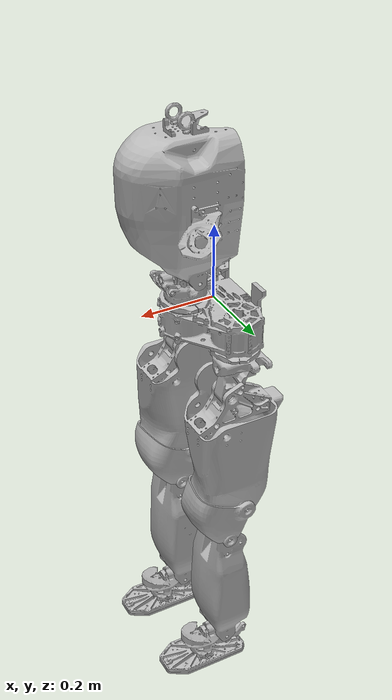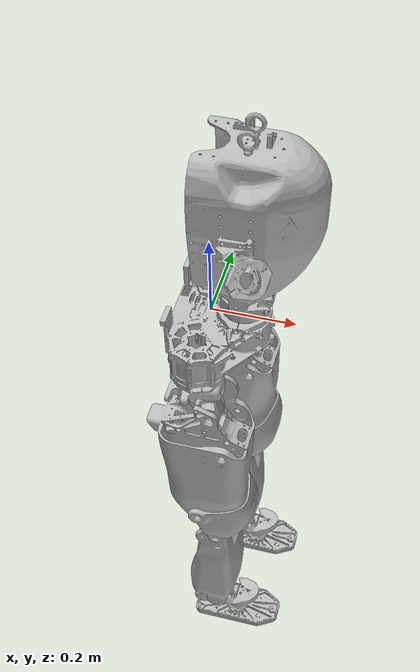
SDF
<sdf version='1.4'>
  <model name='nadia'>
    <link name='PELVIS_LINK'>
      <pose>0 0 0 0 -0 0</pose>
      <inertial>
        <pose>0.0207309 2.023e-05 -0.0309812 0 -0 0</pose>
        <mass>19.0917</mass>
        <inertia>
          <ixx>0.0942</ixx>
          <ixy>6.05e-06</ixy>
          <ixz>0.000379</ixz>
          <iyy>0.0416</iyy>
          <iyz>3.37e-07</iyz>
          <izz>0.112</izz>
        </inertia>
      </inertial>
	  <sensor name="pelvis_orientus_imu" type="imu">
      <pose>-0.00960080 -0.0000010 -0.07599977 0 0 3.141592</pose>
      <always_on>1</always_on>
        <imu>
          <noise>
            <type>gaussian</type>
            <rate>
              <mean>0</mean>
              <stddev>0.0002</stddev>
              <bias_mean>7.5e-06</bias_mean>
              <bias_stddev>8e-07</bias_stddev>
            </rate>
            <accel>
              <mean>0</mean>
              <stddev>0.017</stddev>
              <bias_mean>0.1</bias_mean>
              <bias_stddev>0.001</bias_stddev>
            </accel>
          </noise>
        </imu>
      <visualize>1</visualize>
      <topic>imu_sensor</topic>
    </sensor>

    <sensor name="pelvis_gable_imu" type="imu">
      <pose>0.04096090  -0.17557654 -0.00812384 1.5708 3.141592 0.3926991</pose>
      <always_on>1</always_on>
        <imu>
          <noise>
            <type>gaussian</type>
            <rate>
              <mean>0</mean>
              <stddev>0.0002</stddev>
              <bias_mean>7.5e-06</bias_mean>
              <bias_stddev>8e-07</bias_stddev>
            </rate>
            <accel>
              <mean>0</mean>
              <stddev>0.017</stddev>
              <bias_mean>0.1</bias_mean>
              <bias_stddev>0.001</bias_stddev>
            </accel>
          </noise>
        </imu>
      <visualize>1</visualize>
      <topic>imu_sensor</topic>
    </sensor>

      <sensor name="pelvis_stim_imu" type="imu">
      <pose>-0.03133646 0.02237500 -0.07000000 0.0 3.141592 0.0</pose>
      <always_on>1</always_on>
        <imu>
          <noise>
            <type>gaussian</type>
            <rate>
              <mean>0</mean>
              <stddev>0.0002</stddev>
              <bias_mean>7.5e-06</bias_mean>
              <bias_stddev>8e-07</bias_stddev>
            </rate>
            <accel>
              <mean>0</mean>
              <stddev>0.017</stddev>
              <bias_mean>0.1</bias_mean>
              <bias_stddev>0.001</bias_stddev>
            </accel>
          </noise>
        </imu>
      <visualize>1</visualize>
      <topic>imu_sensor</topic>
    </sensor>

      <visual name='PELVIS_LINK_visual'>
        <pose>0 0 0 0 -0 0</pose>
        <geometry>
          <mesh>
            <scale>1 1 1</scale>
            <uri>model://nadia_V16_description/meshes/pelvis.obj</uri>
          </mesh>
        </geometry>
      </visual>
      <velocity_decay>
        <linear>0</linear>
        <angular>0</angular>
      </velocity_decay>
    </link>
    <link name='LEFT_HIP_YAW_LINK'>
      <pose>0 0.115 -0.07185 0 -0 0</pose>
      <inertial>
        <pose>-0.00629727 0.00606893 -0.0397184 0 -0 0</pose>
        <mass>1.814</mass>
        <inertia>
          <ixx>0.00474191</ixx>
          <ixy>0.000527</ixy>
          <ixz>-0.000307</ixz>
          <iyy>0.00414</iyy>
          <iyz>1.36e-05</iyz>
          <izz>0.00569</izz>
        </inertia>
      </inertial>
      <visual name='LEFT_HIP_YAW_LINK_visual'>
        <pose>0 0 0 0 -0 0</pose>
        <geometry>
          <mesh>
            <scale>1 1 1</scale>
            <uri>model://nadia_V16_description/meshes/left_hip_yaw.obj</uri>
          </mesh>
        </geometry>
      </visual>
      <velocity_decay>
        <linear>0</linear>
        <angular>0</angular>
      </velocity_decay>
    </link>
    <joint name='LEFT_HIP_Z' type='revolute'>
      <child>LEFT_HIP_YAW_LINK</child>
      <parent>PELVIS_LINK</parent>
      <axis>
        <xyz>0 0 -1</xyz>
        <limit>
          <lower>-0.7854</lower>
          <upper>0.7854</upper>
          <effort>1000</effort>
          <velocity>100</velocity>
        </limit>
        <dynamics>
          <damping>0.05</damping>
        </dynamics>
      </axis>
    </joint>
    <link name='LEFT_HIP_ROLL_LINK'>
      <pose>0.035 0.13 -0.1216 0 -0 0</pose>
      <inertial>
        <pose>-0.0132704 0.00316985 -0.054 0 -0 0</pose>
        <mass>0.762</mass>
        <inertia>
          <ixx>0.00102899</ixx>
          <ixy>-9.31e-06</ixy>
          <ixz>0.000352</ixz>
          <iyy>0.00138</iyy>
          <iyz>3.22e-05</iyz>
          <izz>0.000663</izz>
        </inertia>
      </inertial>
      <visual name='LEFT_HIP_ROLL_LINK_visual'>
        <pose>0 0 0 0 -0 0</pose>
        <geometry>
          <mesh>
            <scale>1 1 1</scale>
            <uri>model://nadia_V16_description/meshes/left_hip_roll.obj</uri>
          </mesh>
        </geometry>
      </visual>
      <velocity_decay>
        <linear>0</linear>
        <angular>0</angular>
      </velocity_decay>
    </link>
    <joint name='LEFT_HIP_X' type='revolute'>
      <child>LEFT_HIP_ROLL_LINK</child>
      <parent>LEFT_HIP_YAW_LINK</parent>
      <axis>
        <xyz>1 0 0</xyz>
        <limit>
          <lower>-0.5236</lower>
          <upper>1.0472</upper>
          <effort>1000</effort>
          <velocity>100</velocity>
        </limit>
        <dynamics>
          <damping>0.05</damping>
        </dynamics>
      </axis>
    </joint>
    <link name='LEFT_THIGH_LINK'>
      <pose>0.035 0.13 -0.200668 0 -0 0</pose>
      <inertial>
        <pose>-0.00093749 0.0113451 -0.178631 0 -0 0</pose>
        <mass>10.953</mass>
        <inertia>
          <ixx>0.162227</ixx>
          <ixy>-0.000749</ixy>
          <ixz>0.0156</ixz>
          <iyy>0.174</iyy>
          <iyz>0.00213</iyz>
          <izz>0.0528</izz>
        </inertia>
      </inertial>
      <sensor name="left_thigh_imu" type="imu">
      <pose>0.05793744 0.01666131 -0.09511697 2.025  0.000 -1.571</pose>
      <always_on>1</always_on>
        <imu>
          <noise>
            <type>gaussian</type>
            <rate>
              <mean>0</mean>
              <stddev>0.0002</stddev>
              <bias_mean>7.5e-06</bias_mean>
              <bias_stddev>8e-07</bias_stddev>
            </rate>
            <accel>
              <mean>0</mean>
              <stddev>0.017</stddev>
              <bias_mean>0.1</bias_mean>
              <bias_stddev>0.001</bias_stddev>
            </accel>
          </noise>
        </imu>
      <visualize>1</visualize>
    </sensor>
      <visual name='LEFT_THIGH_LINK_visual'>
        <pose>0 0 0 0 -0 0</pose>
        <geometry>
          <mesh>
            <scale>1 1 1</scale>
            <uri>model://nadia_V16_description/meshes/left_thigh.obj</uri>
          </mesh>
        </geometry>
      </visual>
      <velocity_decay>
        <linear>0</linear>
        <angular>0</angular>
      </velocity_decay>
    </link>
    <joint name='LEFT_HIP_Y' type='revolute'>
      <child>LEFT_THIGH_LINK</child>
      <parent>LEFT_HIP_ROLL_LINK</parent>
      <axis>
        <xyz>0 1 0</xyz>
        <limit>
          <lower>-1.57</lower>
          <upper>0.314</upper>
          <effort>1000</effort>
          <velocity>100</velocity>
        </limit>
        <dynamics>
          <damping>0.05</damping>
        </dynamics>
      </axis>
    </joint>
    <link name='LEFT_KNEE_LINKAGE_LINK'>
      <pose>0.035 0.13 -0.580668 0 -0 0</pose>
      <inertial>
        <pose>0.00901763 0.00753613 -0.0436823 0 -0 0</pose>
        <mass>0.936</mass>
        <inertia>
          <ixx>0.00261734</ixx>
          <ixy>3.06e-07</ixy>
          <ixz>0.000313</ixz>
          <iyy>0.00159</iyy>
          <iyz>1.51e-06</iyz>
          <izz>0.00128</izz>
        </inertia>
      </inertial>
      <visual name='LEFT_KNEE_LINKAGE_LINK_visual'>
        <pose>0 0 0 0 -0 0</pose>
        <geometry>
          <mesh>
            <scale>1 1 1</scale>
            <uri>model://nadia_V16_description/meshes/left_knee_linkage.obj</uri>
          </mesh>
        </geometry>
      </visual>
      <velocity_decay>
        <linear>0</linear>
        <angular>0</angular>
      </velocity_decay>
    </link>
    <joint name='LEFT_KNEE_LINKAGE_UPPER_Y' type='revolute'>
      <child>LEFT_KNEE_LINKAGE_LINK</child>
      <parent>LEFT_THIGH_LINK</parent>
      <axis>
        <xyz>0 1 0</xyz>
        <limit>
          <lower>0</lower>
          <upper>2.6</upper>
          <effort>20</effort>
          <velocity>150</velocity>
        </limit>
        <dynamics>
          <damping>0.05</damping>
        </dynamics>
      </axis>
    </joint>
    <link name='LEFT_KNEE_SHELL_LINK'>
      <pose>0.0138691 0.13 -0.535353 0 -0 0</pose>
      <inertial>
        <pose>0.0248995 0.00826196 -0.0533022 0 -0 0</pose>
        <mass>1.101</mass>
        <inertia>
          <ixx>0.00642</ixx>
          <ixy>-3.64e-05</ixy>
          <ixz>1.43e-05</ixz>
          <iyy>0.00456</iyy>
          <iyz>-6.54e-05</iyz>
          <izz>0.00566</izz>
        </inertia>
      </inertial>
      <visual name='LEFT_KNEE_SHELL_LINK_visual'>
        <pose>0 0 0 0 -0 0</pose>
        <geometry>
          <mesh>
            <scale>1 1 1</scale>
            <uri>model://nadia_V16_description/meshes/left_knee_shell.obj</uri>
          </mesh>
        </geometry>
      </visual>
      <velocity_decay>
        <linear>0</linear>
        <angular>0</angular>
      </velocity_decay>
    </link>
    <joint name='LEFT_KNEE_SHELL_UPPER_Y' type='revolute'>
      <child>LEFT_KNEE_SHELL_LINK</child>
      <parent>LEFT_THIGH_LINK</parent>
      <axis>
        <xyz>0 1 0</xyz>
        <limit>
          <lower>0</lower>
          <upper>2.62</upper>
          <effort>1000</effort>
          <velocity>100</velocity>
        </limit>
        <dynamics>
          <damping>0.05</damping>
        </dynamics>
      </axis>
    </joint>
    <link name='LEFT_SHIN_LINK'>
      <pose>0.0561879 0.13 -0.636886 0 -0 0</pose>
      <inertial>
        <pose>-0.0184149 0.00228086 -0.220542 0 -0 0</pose>
        <mass>5.42</mass>
        <inertia>
          <ixx>0.0644378</ixx>
          <ixy>-0.000214</ixy>
          <ixz>-0.00538</ixz>
          <iyy>0.0583</iyy>
          <iyz>-0.000962</iyz>
          <izz>0.0136</izz>
        </inertia>
      </inertial>
      <sensor name="left_shin_imu" type="imu">
      <pose>-0.03216129 -0.07159184 -0.1864738 -1.570796 0.0 0.0</pose>
      <always_on>1</always_on>
        <imu>
          <noise>
            <type>gaussian</type>
            <rate>
              <mean>0</mean>
              <stddev>0.0002</stddev>
              <bias_mean>7.5e-06</bias_mean>
              <bias_stddev>8e-07</bias_stddev>
            </rate>
            <accel>
              <mean>0</mean>
              <stddev>0.017</stddev>
              <bias_mean>0.1</bias_mean>
              <bias_stddev>0.001</bias_stddev>
            </accel>
          </noise>
        </imu>
      <visualize>1</visualize>
    </sensor>
      <visual name='LEFT_SHIN_LINK_visual'>
        <pose>0 0 0 0 -0 0</pose>
        <geometry>
          <mesh>
            <scale>1 1 1</scale>
            <uri>model://nadia_V16_description/meshes/left_shin.obj</uri>
          </mesh>
        </geometry>
      </visual>
      <velocity_decay>
        <linear>0</linear>
        <angular>0</angular>
      </velocity_decay>
    </link>
    <joint name='LEFT_KNEE_SHELL_LOWER_Y' type='revolute'>
      <child>LEFT_SHIN_LINK</child>
      <parent>LEFT_KNEE_SHELL_LINK</parent>
      <axis>
        <xyz>0 1 0</xyz>
        <limit>
          <lower>0</lower>
          <upper>2.62</upper>
          <effort>1000</effort>
          <velocity>100</velocity>
        </limit>
        <dynamics>
          <damping>0.05</damping>
        </dynamics>
      </axis>
    </joint>
    <link name='LEFT_ANKLE_LINK'>
      <pose>0.0478857 0.13 -1.03903 0 -0 0</pose>
      <inertial>
        <pose>-0.00072338 -6.619e-05 -0.00399965 0 -0 0</pose>
        <mass>0.56</mass>
        <inertia>
          <ixx>0.000459</ixx>
          <ixy>2.65e-08</ixy>
          <ixz>-2.43e-06</ixz>
          <iyy>0.000336</iyy>
          <iyz>1.48e-07</iyz>
          <izz>0.000645</izz>
        </inertia>
      </inertial>
      <visual name='LEFT_ANKLE_LINK_visual'>
        <pose>0 0 0 0 -0 0</pose>
        <geometry>
          <mesh>
            <scale>1 1 1</scale>
            <uri>model://nadia_V16_description/meshes/ankle.obj</uri>
          </mesh>
        </geometry>
      </visual>
      <velocity_decay>
        <linear>0</linear>
        <angular>0</angular>
      </velocity_decay>
    </link>
    <joint name='LEFT_ANKLE_Y' type='revolute'>
      <child>LEFT_ANKLE_LINK</child>
      <parent>LEFT_SHIN_LINK</parent>
      <axis>
        <xyz>0 1 0</xyz>
        <limit>
          <lower>-1.0472</lower>
          <upper>0.698132</upper>
          <effort>1000</effort>
          <velocity>100</velocity>
        </limit>
        <dynamics>
          <damping>0.05</damping>
        </dynamics>
      </axis>
    </joint>
    <link name='LEFT_FOOT_LINK'>
      <pose>0.0478857 0.13 -1.04903 0 -0 0</pose>
      <inertial>
        <pose>0.03075449 0.00007807 -0.04382467 0 -0 0</pose>
        <mass>1.75</mass>
        <inertia>
          <ixx>0.00345011</ixx>
          <ixy>-0.0000073</ixy>
          <ixz>0.0014225</ixz>
          <iyy>0.00955764</iyy>
          <iyz>-2.269e-7</iyz>
          <izz>0.00881313</izz>
        </inertia>
      </inertial>
      <visual name='LEFT_FOOT_LINK_visual'>
        <pose>0 0 0 0 -0 0</pose>
        <geometry>
          <mesh>
            <scale>1 1 1</scale>
            <uri>model://nadia_V16_description/meshes/foot.obj</uri>
          </mesh>
        </geometry>
      </visual>
      <velocity_decay>
        <linear>0</linear>
        <angular>0</angular>
      </velocity_decay>
      <sensor name="left_foot_imu" type="imu">
      <pose>0.053 0.0 -0.063 0.0 0.0 1.57079</pose>
      <always_on>1</always_on>
        <imu>
          <noise>
            <type>gaussian</type>
            <rate>
              <mean>0</mean>
              <stddev>0.0002</stddev>
              <bias_mean>7.5e-06</bias_mean>
              <bias_stddev>8e-07</bias_stddev>
            </rate>
            <accel>
              <mean>0</mean>
              <stddev>0.017</stddev>
              <bias_mean>0.1</bias_mean>
              <bias_stddev>0.001</bias_stddev>
            </accel>
          </noise>
        </imu>
      <visualize>1</visualize>
      </sensor>
    </link>
    <joint name='LEFT_ANKLE_X' type='revolute'>
      <child>LEFT_FOOT_LINK</child>
      <parent>LEFT_ANKLE_LINK</parent>
      <axis>
        <xyz>1 0 0</xyz>
        <limit>
          <lower>-0.436332</lower>
          <upper>0.436332</upper>
          <effort>1000</effort>
          <velocity>100</velocity>
        </limit>
        <dynamics>
          <damping>0.05</damping>
        </dynamics>
      </axis>
    </joint>
    <link name='RIGHT_HIP_YAW_LINK'>
      <pose>0 -0.115 -0.07185 0 -0 0</pose>
      <inertial>
        <pose>-0.00629727 -0.00606893 -0.0397184 0 -0 0</pose>
        <mass>1.814</mass>
        <inertia>
          <ixx>0.00474191</ixx>
          <ixy>-0.000527</ixy>
          <ixz>-0.000307</ixz>
          <iyy>0.00414</iyy>
          <iyz>-1.36e-05</iyz>
          <izz>0.00569</izz>
        </inertia>
      </inertial>
      <visual name='RIGHT_HIP_YAW_LINK_visual'>
        <pose>0 0 0 0 -0 0</pose>
        <geometry>
          <mesh>
            <scale>1 1 1</scale>
            <uri>model://nadia_V16_description/meshes/right_hip_yaw.obj</uri>
          </mesh>
        </geometry>
      </visual>
      <velocity_decay>
        <linear>0</linear>
        <angular>0</angular>
      </velocity_decay>
    </link>
    <joint name='RIGHT_HIP_Z' type='revolute'>
      <child>RIGHT_HIP_YAW_LINK</child>
      <parent>PELVIS_LINK</parent>
      <axis>
        <xyz>0 0 -1</xyz>
        <limit>
          <lower>-0.7854</lower>
          <upper>0.7854</upper>
          <effort>1000</effort>
          <velocity>100</velocity>
        </limit>
        <dynamics>
          <damping>0.05</damping>
        </dynamics>
      </axis>
    </joint>
    <link name='RIGHT_HIP_ROLL_LINK'>
      <pose>0.035 -0.13 -0.1216 0 -0 0</pose>
      <inertial>
        <pose>-0.0132704 -0.00316985 -0.054 0 -0 0</pose>
        <mass>0.762</mass>
        <inertia>
          <ixx>0.00102899</ixx>
          <ixy>9.31e-06</ixy>
          <ixz>0.000352</ixz>
          <iyy>0.00138</iyy>
          <iyz>-3.22e-05</iyz>
          <izz>0.000663</izz>
        </inertia>
      </inertial>
      <visual name='RIGHT_HIP_ROLL_LINK_visual'>
        <pose>0 0 0 0 -0 0</pose>
        <geometry>
          <mesh>
            <scale>1 1 1</scale>
            <uri>model://nadia_V16_description/meshes/right_hip_roll.obj</uri>
          </mesh>
        </geometry>
      </visual>
      <velocity_decay>
        <linear>0</linear>
        <angular>0</angular>
      </velocity_decay>
    </link>
    <joint name='RIGHT_HIP_X' type='revolute'>
      <child>RIGHT_HIP_ROLL_LINK</child>
      <parent>RIGHT_HIP_YAW_LINK</parent>
      <axis>
        <xyz>1 0 0</xyz>
        <limit>
          <lower>-1.0472</lower>
          <upper>0.5236</upper>
          <effort>1000</effort>
          <velocity>100</velocity>
        </limit>
        <dynamics>
          <damping>0.05</damping>
        </dynamics>
      </axis>
    </joint>
    <link name='RIGHT_THIGH_LINK'>
      <pose>0.035 -0.13 -0.200668 0 -0 0</pose>
      <inertial>
        <pose>-0.00093749 -0.0113451 -0.178631 0 -0 0</pose>
        <mass>10.953</mass>
        <inertia>
          <ixx>0.162227</ixx>
          <ixy>0.000749</ixy>
          <ixz>0.0156</ixz>
          <iyy>0.174</iyy>
          <iyz>-0.00213</iyz>
          <izz>0.0528</izz>
        </inertia>
      </inertial>
      <sensor name="right_thigh_imu" type="imu">
      <pose>0.05793670 0.01066129 -0.09511742 2.025  0.000 -1.571</pose>
      <always_on>1</always_on>
        <imu>
          <noise>
            <type>gaussian</type>
            <rate>
              <mean>0</mean>
              <stddev>0.0002</stddev>
              <bias_mean>7.5e-06</bias_mean>
              <bias_stddev>8e-07</bias_stddev>
            </rate>
            <accel>
              <mean>0</mean>
              <stddev>0.017</stddev>
              <bias_mean>0.1</bias_mean>
              <bias_stddev>0.001</bias_stddev>
            </accel>
          </noise>
        </imu>
      <visualize>1</visualize>
    </sensor>
      <visual name='RIGHT_THIGH_LINK_visual'>
        <pose>0 0 0 0 -0 0</pose>
        <geometry>
          <mesh>
            <scale>1 1 1</scale>
            <uri>model://nadia_V16_description/meshes/right_thigh.obj</uri>
          </mesh>
        </geometry>
      </visual>
      <velocity_decay>
        <linear>0</linear>
        <angular>0</angular>
      </velocity_decay>
    </link>
    <joint name='RIGHT_HIP_Y' type='revolute'>
      <child>RIGHT_THIGH_LINK</child>
      <parent>RIGHT_HIP_ROLL_LINK</parent>
      <axis>
        <xyz>0 1 0</xyz>
        <limit>
          <lower>-1.57</lower>
          <upper>0.314</upper>
          <effort>1000</effort>
          <velocity>100</velocity>
        </limit>
        <dynamics>
          <damping>0.05</damping>
        </dynamics>
      </axis>
    </joint>
    <link name='RIGHT_KNEE_LINKAGE_LINK'>
      <pose>0.035 -0.13 -0.580668 0 -0 0</pose>
      <inertial>
        <pose>0.00901763 -0.00753613 -0.0436823 0 -0 0</pose>
        <mass>0.936</mass>
        <inertia>
          <ixx>0.00261734</ixx>
          <ixy>-3.06e-07</ixy>
          <ixz>0.000313</ixz>
          <iyy>0.00159</iyy>
          <iyz>-1.51e-06</iyz>
          <izz>0.00128</izz>
        </inertia>
      </inertial>
      <visual name='RIGHT_KNEE_LINKAGE_LINK_visual'>
        <pose>0 0 0 0 -0 0</pose>
        <geometry>
          <mesh>
            <scale>1 1 1</scale>
            <uri>model://nadia_V16_description/meshes/right_knee_linkage.obj</uri>
          </mesh>
        </geometry>
      </visual>
      <velocity_decay>
        <linear>0</linear>
        <angular>0</angular>
      </velocity_decay>
    </link>
    <joint name='RIGHT_KNEE_LINKAGE_UPPER_Y' type='revolute'>
      <child>RIGHT_KNEE_LINKAGE_LINK</child>
      <parent>RIGHT_THIGH_LINK</parent>
      <axis>
        <xyz>0 1 0</xyz>
        <limit>
          <lower>0</lower>
          <upper>2.62</upper>
          <effort>1000</effort>
          <velocity>100</velocity>
        </limit>
        <dynamics>
          <damping>0.05</damping>
        </dynamics>
      </axis>
    </joint>
    <link name='RIGHT_KNEE_SHELL_LINK'>
      <pose>0.0138691 -0.13 -0.535353 0 -0 0</pose>
      <inertial>
        <pose>0.0248995 -0.00826196 -0.0533022 0 -0 0</pose>
        <mass>1.101</mass>
        <inertia>
          <ixx>0.00642</ixx>
          <ixy>3.64e-05</ixy>
          <ixz>1.43e-05</ixz>
          <iyy>0.00456</iyy>
          <iyz>6.54e-05</iyz>
          <izz>0.00566</izz>
        </inertia>
      </inertial>
      <visual name='RIGHT_KNEE_SHELL_LINK_visual'>
        <pose>0 0 0 0 -0 0</pose>
        <geometry>
          <mesh>
            <scale>1 1 1</scale>
            <uri>model://nadia_V16_description/meshes/right_knee_shell.obj</uri>
          </mesh>
        </geometry>
      </visual>
      <velocity_decay>
        <linear>0</linear>
        <angular>0</angular>
      </velocity_decay>
    </link>
    <joint name='RIGHT_KNEE_SHELL_UPPER_Y' type='revolute'>
      <child>RIGHT_KNEE_SHELL_LINK</child>
      <parent>RIGHT_THIGH_LINK</parent>
      <axis>
        <xyz>0 1 0</xyz>
        <limit>
          <lower>0</lower>
          <upper>2.62</upper>
          <effort>1000</effort>
          <velocity>100</velocity>
        </limit>
        <dynamics>
          <damping>0.05</damping>
        </dynamics>
      </axis>
    </joint>
    <link name='RIGHT_SHIN_LINK'>
      <pose>0.0561879 -0.13 -0.636886 0 -0 0</pose>
      <inertial>
        <pose>-0.0183705 -0.00241134 -0.219913 0 -0 0</pose>
        <mass>5.42</mass>
        <inertia>
          <ixx>0.0644431</ixx>
          <ixy>0.000202</ixy>
          <ixz>-0.00539</ixz>
          <iyy>0.0583</iyy>
          <iyz>0.000906</iyz>
          <izz>0.0136</izz>
        </inertia>
      </inertial>
      <sensor name="right_shin_imu" type="imu">
      <pose>-0.002838710 0.07159142 -0.1864738 -1.570796 0.0 3.141592</pose>
      <always_on>1</always_on>
        <imu>
          <noise>
            <type>gaussian</type>
            <rate>
              <mean>0</mean>
              <stddev>0.0002</stddev>
              <bias_mean>7.5e-06</bias_mean>
              <bias_stddev>8e-07</bias_stddev>
            </rate>
            <accel>
              <mean>0</mean>
              <stddev>0.017</stddev>
              <bias_mean>0.1</bias_mean>
              <bias_stddev>0.001</bias_stddev>
            </accel>
          </noise>
        </imu>
      <visualize>1</visualize>
    </sensor>
      <visual name='RIGHT_SHIN_LINK_visual'>
        <pose>0 0 0 0 -0 0</pose>
        <geometry>
          <mesh>
            <scale>1 1 1</scale>
            <uri>model://nadia_V16_description/meshes/right_shin.obj</uri>
          </mesh>
        </geometry>
      </visual>
      <velocity_decay>
        <linear>0</linear>
        <angular>0</angular>
      </velocity_decay>
    </link>
    <joint name='RIGHT_KNEE_SHELL_LOWER_Y' type='revolute'>
      <child>RIGHT_SHIN_LINK</child>
      <parent>RIGHT_KNEE_SHELL_LINK</parent>
      <axis>
        <xyz>0 1 0</xyz>
        <limit>
          <lower>0</lower>
          <upper>2.62</upper>
          <effort>1000</effort>
          <velocity>100</velocity>
        </limit>
        <dynamics>
          <damping>0.05</damping>
        </dynamics>
      </axis>
    </joint>
    <link name='RIGHT_ANKLE_LINK'>
      <pose>0.0478857 -0.13 -1.03903 0 -0 0</pose>
      <inertial>
        <pose>-0.00072338 6.619e-05 -0.00399965 0 -0 0</pose>
        <mass>0.56</mass>
        <inertia>
          <ixx>0.000459</ixx>
          <ixy>-2.65e-08</ixy>
          <ixz>-2.43e-06</ixz>
          <iyy>0.000336</iyy>
          <iyz>-1.48e-07</iyz>
          <izz>0.000645</izz>
        </inertia>
      </inertial>
      <visual name='RIGHT_ANKLE_LINK_visual'>
        <pose>0 0 0 0 -0 0</pose>
        <geometry>
          <mesh>
            <scale>1 1 1</scale>
            <uri>model://nadia_V16_description/meshes/ankle.obj</uri>
          </mesh>
        </geometry>
      </visual>
      <velocity_decay>
        <linear>0</linear>
        <angular>0</angular>
      </velocity_decay>
    </link>
    <joint name='RIGHT_ANKLE_Y' type='revolute'>
      <child>RIGHT_ANKLE_LINK</child>
      <parent>RIGHT_SHIN_LINK</parent>
      <axis>
        <xyz>0 1 0</xyz>
        <limit>
          <lower>-1.0472</lower>
          <upper>0.698132</upper>
          <effort>1000</effort>
          <velocity>100</velocity>
        </limit>
        <dynamics>
          <damping>0.05</damping>
        </dynamics>
      </axis>
    </joint>
    <link name='RIGHT_FOOT_LINK'>
      <pose>0.0478857 -0.13 -1.04903 0 -0 0</pose>
      <inertial>
        <pose>0.032048 4e-06 -0.028422 0 -0 0</pose>
        <mass>1.75</mass>
        <inertia>
          <ixx>0.00261</ixx>
          <ixy>-3.59e-07</ixy>
          <ixz>0.00102</ixz>
          <iyy>0.011</iyy>
          <iyz>-2.99e-07</iyz>
          <izz>0.0121</izz>
        </inertia>
      </inertial>
      <visual name='RIGHT_FOOT_LINK_visual'>
        <pose>0 0 0 0 -0 0</pose>
        <geometry>
          <mesh>
            <scale>1 1 1</scale>
            <uri>model://nadia_V16_description/meshes/foot.obj</uri>
          </mesh>
        </geometry>
      </visual>
      <velocity_decay>
        <linear>0</linear>
        <angular>0</angular>
      </velocity_decay>
      <sensor name="right_foot_imu" type="imu">
      <pose>0.053 0.0 -0.063 0.0 0.0 1.57079</pose>
      <always_on>1</always_on>
        <imu>
          <noise>
            <type>gaussian</type>
            <rate>
              <mean>0</mean>
              <stddev>0.0002</stddev>
              <bias_mean>7.5e-06</bias_mean>
              <bias_stddev>8e-07</bias_stddev>
            </rate>
            <accel>
              <mean>0</mean>
              <stddev>0.017</stddev>
              <bias_mean>0.1</bias_mean>
              <bias_stddev>0.001</bias_stddev>
            </accel>
          </noise>
        </imu>
      <visualize>1</visualize>
      </sensor>
    </link>
    <joint name='RIGHT_ANKLE_X' type='revolute'>
      <child>RIGHT_FOOT_LINK</child>
      <parent>RIGHT_ANKLE_LINK</parent>
      <axis>
        <xyz>1 0 0</xyz>
        <limit>
          <lower>-0.436332</lower>
          <upper>0.436332</upper>
          <effort>1000</effort>
          <velocity>100</velocity>
        </limit>
        <dynamics>
          <damping>0.05</damping>
        </dynamics>
      </axis>
    </joint>
    <link name='SPINE_YAW_LINK'>
      <pose>0.08 0 0.00635 0 -0 0</pose>
      <inertial>
        <pose>-0.00853118 -2.697e-05 0.0379145 0 -0 0</pose>
        <mass>0.91</mass>
        <inertia>
          <ixx>0.00374289</ixx>
          <ixy>1.25498e-07</ixy>
          <ixz>0.000271325</ixz>
          <iyy>0.00403003</iyy>
          <iyz>-1.38016e-07</iyz>
          <izz>0.00621298</izz>
        </inertia>
      </inertial>
      <visual name='SPINE_YAW_LINK_visual'>
        <pose>0 0 0 0 -0 0</pose>
        <geometry>
          <mesh>
            <scale>1 1 1</scale>
            <uri>model://nadia_V16_description/meshes/spine_yaw.obj</uri>
          </mesh>
        </geometry>
      </visual>
      <velocity_decay>
        <linear>0</linear>
        <angular>0</angular>
      </velocity_decay>
    </link>
    <joint name='SPINE_Z' type='revolute'>
      <child>SPINE_YAW_LINK</child>
      <parent>PELVIS_LINK</parent>
      <axis>
        <xyz>0 0 1</xyz>
        <limit>
          <lower>-1.0472</lower>
          <upper>1.0472</upper>
          <effort>1000</effort>
          <velocity>100</velocity>
        </limit>
        <dynamics>
          <damping>0.05</damping>
        </dynamics>
      </axis>
    </joint>
    <link name='SPINE_ROLL_LINK'>
      <pose>0.08 0 0.0884 0 -0 0</pose>
      <inertial>
        <pose>-0.0190498 7e-08 0.0197924 0 -0 0</pose>
        <mass>0.44</mass>
        <inertia>
          <ixx>0.000373262</ixx>
          <ixy>-1.51442e-10</ixy>
          <ixz>-6.69067e-05</ixz>
          <iyy>0.000649978</iyy>
          <iyz>-1.27858e-10</iyz>
          <izz>0.000419409</izz>
        </inertia>
      </inertial>
      <visual name='SPINE_ROLL_LINK_visual'>
        <pose>0 0 0 0 -0 0</pose>
        <geometry>
          <mesh>
            <scale>1 1 1</scale>
            <uri>model://nadia_V16_description/meshes/spine_roll.obj</uri>
          </mesh>
        </geometry>
      </visual>
      <velocity_decay>
        <linear>0</linear>
        <angular>0</angular>
      </velocity_decay>
    </link>
    <joint name='SPINE_X' type='revolute'>
      <child>SPINE_ROLL_LINK</child>
      <parent>SPINE_YAW_LINK</parent>
      <axis>
        <xyz>1 0 0</xyz>
        <limit>
          <lower>-0.523599</lower>
          <upper>0.523599</upper>
          <effort>1000</effort>
          <velocity>100</velocity>
        </limit>
        <dynamics>
          <damping>0.05</damping>
        </dynamics>
      </axis>
    </joint>
    <link name='TORSO_LINK'>
      <pose>0.08 0 0.0984 0 -0 0</pose>
      <inertial>
        <pose>-0.0361387 -2.81e-06 0.259086 0 -0 0</pose>
        <mass>15.34</mass>
        <inertia>
          <ixx>0.534505</ixx>
          <ixy>8.4152e-05</ixy>
          <ixz>-0.00672956</ixz>
          <iyy>0.50541</iyy>
          <iyz>0.000207997</iyz>
          <izz>0.379402</izz>
        </inertia>
      </inertial>
      <visual name='TORSO_LINK_visual'>
        <pose>0 0 0 0 -0 0</pose>
        <geometry>
          <mesh>
            <scale>1 1 1</scale>
            <uri>model://nadia_V16_description/meshes/torso.obj</uri>
          </mesh>
        </geometry>
      </visual>
      <velocity_decay>
        <linear>0</linear>
        <angular>0</angular>
      </velocity_decay>
      <sensor name="torso_imu" type="imu">
      <pose>0.04529 -0.02427 0.33757 3.141592 0 0</pose>
      <always_on>1</always_on>
        <imu>
          <noise>
            <type>gaussian</type>
            <rate>
              <mean>0</mean>
              <stddev>0.0002</stddev>
              <bias_mean>7.5e-06</bias_mean>
              <bias_stddev>8e-07</bias_stddev>
            </rate>
            <accel>
              <mean>0</mean>
              <stddev>0.017</stddev>
              <bias_mean>0.1</bias_mean>
              <bias_stddev>0.001</bias_stddev>
            </accel>
          </noise>
        </imu>
      <visualize>1</visualize>
      <topic>imu_sensor</topic>
    </sensor>
    </link>
    <joint name='SPINE_Y' type='revolute'>
      <child>TORSO_LINK</child>
      <parent>SPINE_ROLL_LINK</parent>
      <axis>
        <xyz>0 1 0</xyz>
        <limit>
          <lower>-0.34</lower>
          <upper>0.98</upper>
          <effort>1000</effort>
          <velocity>100</velocity>
        </limit>
        <dynamics>
          <damping>0.05</damping>
        </dynamics>
      </axis>
    </joint>
  </model>
</sdf>
